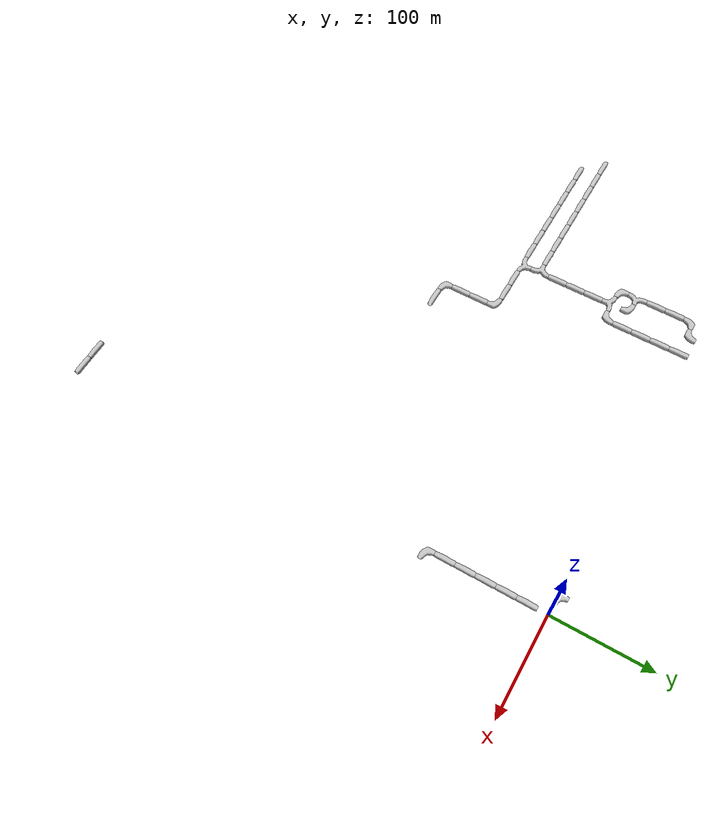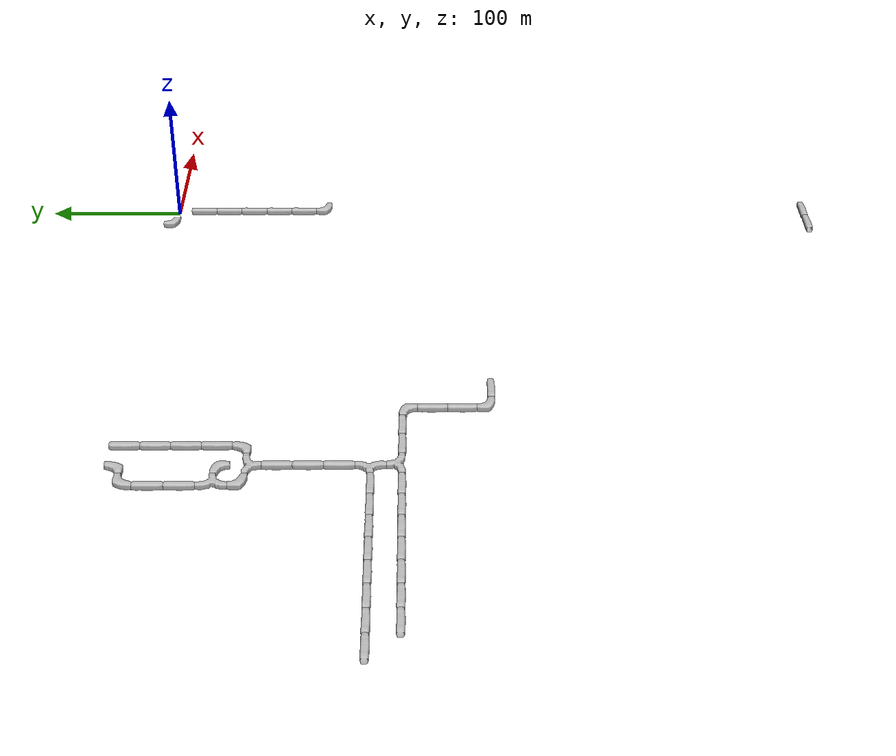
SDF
<sdf version="1.6">
 <world name="cave_4000_2">
  <include>
   <static>true</static>
   <name>cave_0_-1</name>
   <pose>0 -20 0 0 0 0.0</pose>
   <uri>model://cave_straight_20m</uri>
  </include>
  <include>
   <static>true</static>
   <name>cave_0_-2</name>
   <pose>0 -40 0 0 0 0.0</pose>
   <uri>model://cave_straight_20m</uri>
  </include>
  <include>
   <static>true</static>
   <name>cave_0_-3</name>
   <pose>0 -60 0 0 0 0.0</pose>
   <uri>model://cave_straight_20m</uri>
  </include>
  <include>
   <static>true</static>
   <name>cave_0_-4</name>
   <pose>0 -80 0 0 0 0.0</pose>
   <uri>model://cave_straight_20m</uri>
  </include>
  <include>
   <static>true</static>
   <name>cave_0_-5</name>
   <pose>0 -100 0 0 0 0.0</pose>
   <uri>model://cave_straight_20m</uri>
  </include>
  <include>
   <static>true</static>
   <name>cave_0_-6</name>
   <pose>0 -120 0 0 0 0.0</pose>
   <uri>model://cave_L_20m</uri>
  </include>
  <include>
   <static>true</static>
   <name>cave_0_-25</name>
   <pose>0 -500 0 0 0 1.5707963267948966</pose>
   <uri>model://cave_straight_20m</uri>
  </include>
  <include>
   <static>true</static>
   <name>cave_-1_-25</name>
   <pose>-20 -500 0 0 0 1.5707963267948966</pose>
   <uri>model://cave_straight_20m</uri>
  </include>
  <include>
   <static>true</static>
   <name>cave_-1_0</name>
   <pose>-20 0 0 0 0 0.0</pose>
   <uri>model://cave_L_20m</uri>
  </include>
  <include>
   <static>true</static>
   <name>cave_-15_0</name>
   <pose>-300 0 0 0 0 0.0</pose>
   <uri>model://cave_straight_20m</uri>
  </include>
  <include>
   <static>true</static>
   <name>cave_-15_-1</name>
   <pose>-300 -20 0 0 0 0.0</pose>
   <uri>model://cave_straight_20m</uri>
  </include>
  <include>
   <static>true</static>
   <name>cave_-15_-2</name>
   <pose>-300 -40 0 0 0 0.0</pose>
   <uri>model://cave_straight_20m</uri>
  </include>
  <include>
   <static>true</static>
   <name>cave_-15_-3</name>
   <pose>-300 -60 0 0 0 0.0</pose>
   <uri>model://cave_straight_20m</uri>
  </include>
  <include>
   <static>true</static>
   <name>cave_-15_-4</name>
   <pose>-300 -80 0 0 0 1.5707963267948966</pose>
   <uri>model://cave_L_20m</uri>
  </include>
  <include>
   <static>true</static>
   <name>cave_-16_-4</name>
   <pose>-320 -80 0 0 0 3.141592653589793</pose>
   <uri>model://cave_3way_20m</uri>
  </include>
  <include>
   <static>true</static>
   <name>cave_-16_-5</name>
   <pose>-320 -100 0 0 0 0.0</pose>
   <uri>model://cave_straight_20m</uri>
  </include>
  <include>
   <static>true</static>
   <name>cave_-16_-6</name>
   <pose>-320 -120 0 0 0 0.0</pose>
   <uri>model://cave_straight_20m</uri>
  </include>
  <include>
   <static>true</static>
   <name>cave_-16_-7</name>
   <pose>-320 -140 0 0 0 0.0</pose>
   <uri>model://cave_straight_20m</uri>
  </include>
  <include>
   <static>true</static>
   <name>cave_-16_-8</name>
   <pose>-320 -160 0 0 0 1.5707963267948966</pose>
   <uri>model://cave_3way_20m</uri>
  </include>
  <include>
   <static>true</static>
   <name>cave_-16_-9</name>
   <pose>-320 -180 0 0 0 0.0</pose>
   <uri>model://cave_3way_20m</uri>
  </include>
  <include>
   <static>true</static>
   <name>cave_-15_-9</name>
   <pose>-300 -180 0 0 0 1.5707963267948966</pose>
   <uri>model://cave_straight_20m</uri>
  </include>
  <include>
   <static>true</static>
   <name>cave_-14_-9</name>
   <pose>-280 -180 0 0 0 1.5707963267948966</pose>
   <uri>model://cave_straight_20m</uri>
  </include>
  <include>
   <static>true</static>
   <name>cave_-13_-9</name>
   <pose>-260 -180 0 0 0 3.141592653589793</pose>
   <uri>model://cave_L_20m</uri>
  </include>
  <include>
   <static>true</static>
   <name>cave_-13_-10</name>
   <pose>-260 -200 0 0 0 0.0</pose>
   <uri>model://cave_straight_20m</uri>
  </include>
  <include>
   <static>true</static>
   <name>cave_-13_-11</name>
   <pose>-260 -220 0 0 0 0.0</pose>
   <uri>model://cave_straight_20m</uri>
  </include>
  <include>
   <static>true</static>
   <name>cave_-13_-12</name>
   <pose>-260 -240 0 0 0 0.0</pose>
   <uri>model://cave_L_20m</uri>
  </include>
  <include>
   <static>true</static>
   <name>cave_-12_-12</name>
   <pose>-240 -240 0 0 0 1.5707963267948966</pose>
   <uri>model://cave_straight_20m</uri>
  </include>
  <include>
   <static>true</static>
   <name>cave_-17_-9</name>
   <pose>-340 -180 0 0 0 1.5707963267948966</pose>
   <uri>model://cave_straight_20m</uri>
  </include>
  <include>
   <static>true</static>
   <name>cave_-18_-9</name>
   <pose>-360 -180 0 0 0 1.5707963267948966</pose>
   <uri>model://cave_straight_20m</uri>
  </include>
  <include>
   <static>true</static>
   <name>cave_-19_-9</name>
   <pose>-380 -180 0 0 0 1.5707963267948966</pose>
   <uri>model://cave_straight_20m</uri>
  </include>
  <include>
   <static>true</static>
   <name>cave_-20_-9</name>
   <pose>-400 -180 0 0 0 1.5707963267948966</pose>
   <uri>model://cave_straight_20m</uri>
  </include>
  <include>
   <static>true</static>
   <name>cave_-21_-9</name>
   <pose>-420 -180 0 0 0 1.5707963267948966</pose>
   <uri>model://cave_straight_20m</uri>
  </include>
  <include>
   <static>true</static>
   <name>cave_-22_-9</name>
   <pose>-440 -180 0 0 0 1.5707963267948966</pose>
   <uri>model://cave_straight_20m</uri>
  </include>
  <include>
   <static>true</static>
   <name>cave_-23_-9</name>
   <pose>-460 -180 0 0 0 1.5707963267948966</pose>
   <uri>model://cave_straight_20m</uri>
  </include>
  <include>
   <static>true</static>
   <name>cave_-17_-8</name>
   <pose>-340 -160 0 0 0 1.5707963267948966</pose>
   <uri>model://cave_straight_20m</uri>
  </include>
  <include>
   <static>true</static>
   <name>cave_-18_-8</name>
   <pose>-360 -160 0 0 0 1.5707963267948966</pose>
   <uri>model://cave_straight_20m</uri>
  </include>
  <include>
   <static>true</static>
   <name>cave_-19_-8</name>
   <pose>-380 -160 0 0 0 1.5707963267948966</pose>
   <uri>model://cave_straight_20m</uri>
  </include>
  <include>
   <static>true</static>
   <name>cave_-20_-8</name>
   <pose>-400 -160 0 0 0 1.5707963267948966</pose>
   <uri>model://cave_straight_20m</uri>
  </include>
  <include>
   <static>true</static>
   <name>cave_-21_-8</name>
   <pose>-420 -160 0 0 0 1.5707963267948966</pose>
   <uri>model://cave_straight_20m</uri>
  </include>
  <include>
   <static>true</static>
   <name>cave_-22_-8</name>
   <pose>-440 -160 0 0 0 1.5707963267948966</pose>
   <uri>model://cave_straight_20m</uri>
  </include>
  <include>
   <static>true</static>
   <name>cave_-23_-8</name>
   <pose>-460 -160 0 0 0 1.5707963267948966</pose>
   <uri>model://cave_straight_20m</uri>
  </include>
  <include>
   <static>true</static>
   <name>cave_-24_-8</name>
   <pose>-480 -160 0 0 0 1.5707963267948966</pose>
   <uri>model://cave_straight_20m</uri>
  </include>
  <include>
   <static>true</static>
   <name>cave_-17_-4</name>
   <pose>-340 -80 0 0 0 0.0</pose>
   <uri>model://cave_L_20m</uri>
  </include>
  <include>
   <static>true</static>
   <name>cave_-17_-3</name>
   <pose>-340 -60 0 0 0 -1.5707963267948966</pose>
   <uri>model://cave_3way_20m</uri>
  </include>
  <include>
   <static>true</static>
   <name>cave_-16_-3</name>
   <pose>-320 -60 0 0 0 3.141592653589793</pose>
   <uri>model://cave_L_20m</uri>
  </include>
  <include>
   <static>true</static>
   <name>cave_-17_-2</name>
   <pose>-340 -40 0 0 0 0.0</pose>
   <uri>model://cave_straight_20m</uri>
  </include>
  <include>
   <static>true</static>
   <name>cave_-17_-1</name>
   <pose>-340 -20 0 0 0 0.0</pose>
   <uri>model://cave_straight_20m</uri>
  </include>
  <include>
   <static>true</static>
   <name>cave_-17_0</name>
   <pose>-340 0 0 0 0 -1.5707963267948966</pose>
   <uri>model://cave_L_20m</uri>
  </include>
  <include>
   <static>true</static>
   <name>cave_-16_0</name>
   <pose>-320 0 0 0 0 1.5707963267948966</pose>
   <uri>model://cave_L_20m</uri>
  </include>
 </world>
</sdf>
